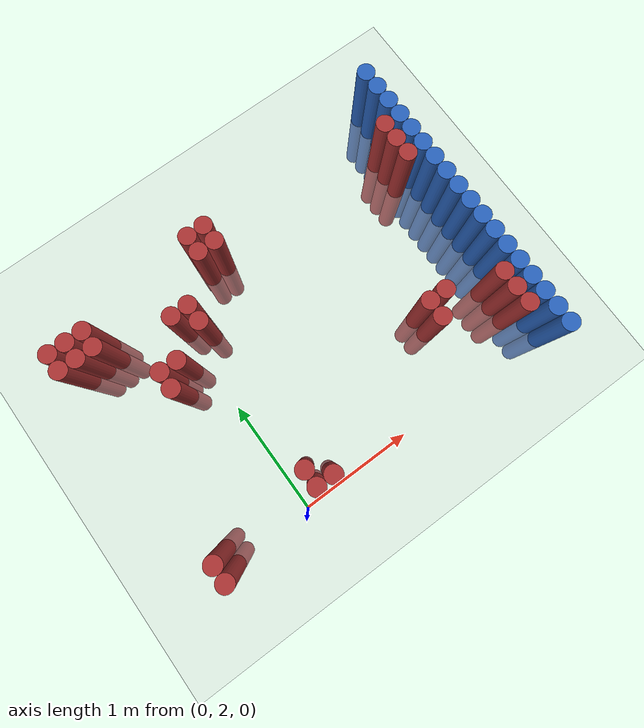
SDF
<sdf version="1.6">
 <world name="default">
  <model name="ground_plane">
   <static>1</static>
   <link name="link">
    <collision name="collision">
     <geometry><plane><normal>0 0 1</normal><size>100 100</size></plane></geometry>
     <surface><friction><ode><mu>100</mu><mu2>50</mu2></ode></friction></surface>
    </collision>
    <visual name="visual">
     <cast_shadows>0</cast_shadows>
     <geometry><plane><normal>0 0 1</normal><size>100 100</size></plane></geometry>
     <material>
      <script><uri>file://media/materials/scripts/gazebo.material</uri><name>Gazebo/Grey</name></script>
     </material>
    </visual>
   </link>
  </model>
  <model name="unit_cylinder_164">
   <static>1</static>
   <pose>-0.875000 3.925000 0.000000 0.000000 0.000000 0.000000</pose>
   <link name="link">
    <inertial>
     <mass>1</mass>
     <inertia><ixx>0.145833</ixx><ixy>0</ixy><ixz>0</ixz><iyy>0.145833</iyy><iyz>0</iyz><izz>0.125</izz></inertia>
    </inertial>
    <collision name="collision">
     <geometry><cylinder><radius>0.075000</radius><length>1.5</length></cylinder></geometry>
    </collision>
    <visual name="visual">
     <geometry><cylinder><radius>0.075000</radius><length>1.5</length></cylinder></geometry>
     <material>
      <ambient>0.648000 0.192000 0.192000 1</ambient>
      <diffuse>0.648000 0.192000 0.192000 1</diffuse>
     </material>
     <material>
      <script><name>Gazebo/Grey</name><uri>file://media/materials/scripts/gazebo.material</uri></script>
     </material>
    </visual>
   </link>
  </model>
  <model name="unit_cylinder_165">
   <static>1</static>
   <pose>-0.875000 4.075000 0.000000 0.000000 0.000000 0.000000</pose>
   <link name="link">
    <inertial>
     <mass>1</mass>
     <inertia><ixx>0.145833</ixx><ixy>0</ixy><ixz>0</ixz><iyy>0.145833</iyy><iyz>0</iyz><izz>0.125</izz></inertia>
    </inertial>
    <collision name="collision">
     <geometry><cylinder><radius>0.075000</radius><length>1.5</length></cylinder></geometry>
    </collision>
    <visual name="visual">
     <geometry><cylinder><radius>0.075000</radius><length>1.5</length></cylinder></geometry>
     <material>
      <ambient>0.648000 0.192000 0.192000 1</ambient>
      <diffuse>0.648000 0.192000 0.192000 1</diffuse>
     </material>
     <material>
      <script><name>Gazebo/Grey</name><uri>file://media/materials/scripts/gazebo.material</uri></script>
     </material>
    </visual>
   </link>
  </model>
  <model name="unit_cylinder_168">
   <static>1</static>
   <pose>-0.725000 1.975000 0.000000 0.000000 0.000000 0.000000</pose>
   <link name="link">
    <inertial>
     <mass>1</mass>
     <inertia><ixx>0.145833</ixx><ixy>0</ixy><ixz>0</ixz><iyy>0.145833</iyy><iyz>0</iyz><izz>0.125</izz></inertia>
    </inertial>
    <collision name="collision">
     <geometry><cylinder><radius>0.075000</radius><length>1.5</length></cylinder></geometry>
    </collision>
    <visual name="visual">
     <geometry><cylinder><radius>0.075000</radius><length>1.5</length></cylinder></geometry>
     <material>
      <ambient>0.648000 0.192000 0.192000 1</ambient>
      <diffuse>0.648000 0.192000 0.192000 1</diffuse>
     </material>
     <material>
      <script><name>Gazebo/Grey</name><uri>file://media/materials/scripts/gazebo.material</uri></script>
     </material>
    </visual>
   </link>
  </model>
  <model name="unit_cylinder_169">
   <static>1</static>
   <pose>-0.725000 2.125000 0.000000 0.000000 0.000000 0.000000</pose>
   <link name="link">
    <inertial>
     <mass>1</mass>
     <inertia><ixx>0.145833</ixx><ixy>0</ixy><ixz>0</ixz><iyy>0.145833</iyy><iyz>0</iyz><izz>0.125</izz></inertia>
    </inertial>
    <collision name="collision">
     <geometry><cylinder><radius>0.075000</radius><length>1.5</length></cylinder></geometry>
    </collision>
    <visual name="visual">
     <geometry><cylinder><radius>0.075000</radius><length>1.5</length></cylinder></geometry>
     <material>
      <ambient>0.648000 0.192000 0.192000 1</ambient>
      <diffuse>0.648000 0.192000 0.192000 1</diffuse>
     </material>
     <material>
      <script><name>Gazebo/Grey</name><uri>file://media/materials/scripts/gazebo.material</uri></script>
     </material>
    </visual>
   </link>
  </model>
  <model name="unit_cylinder_170">
   <static>1</static>
   <pose>-0.725000 3.925000 0.000000 0.000000 0.000000 0.000000</pose>
   <link name="link">
    <inertial>
     <mass>1</mass>
     <inertia><ixx>0.145833</ixx><ixy>0</ixy><ixz>0</ixz><iyy>0.145833</iyy><iyz>0</iyz><izz>0.125</izz></inertia>
    </inertial>
    <collision name="collision">
     <geometry><cylinder><radius>0.075000</radius><length>1.5</length></cylinder></geometry>
    </collision>
    <visual name="visual">
     <geometry><cylinder><radius>0.075000</radius><length>1.5</length></cylinder></geometry>
     <material>
      <ambient>0.648000 0.192000 0.192000 1</ambient>
      <diffuse>0.648000 0.192000 0.192000 1</diffuse>
     </material>
     <material>
      <script><name>Gazebo/Grey</name><uri>file://media/materials/scripts/gazebo.material</uri></script>
     </material>
    </visual>
   </link>
  </model>
  <model name="unit_cylinder_171">
   <static>1</static>
   <pose>-0.725000 4.075000 0.000000 0.000000 0.000000 0.000000</pose>
   <link name="link">
    <inertial>
     <mass>1</mass>
     <inertia><ixx>0.145833</ixx><ixy>0</ixy><ixz>0</ixz><iyy>0.145833</iyy><iyz>0</iyz><izz>0.125</izz></inertia>
    </inertial>
    <collision name="collision">
     <geometry><cylinder><radius>0.075000</radius><length>1.5</length></cylinder></geometry>
    </collision>
    <visual name="visual">
     <geometry><cylinder><radius>0.075000</radius><length>1.5</length></cylinder></geometry>
     <material>
      <ambient>0.648000 0.192000 0.192000 1</ambient>
      <diffuse>0.648000 0.192000 0.192000 1</diffuse>
     </material>
     <material>
      <script><name>Gazebo/Grey</name><uri>file://media/materials/scripts/gazebo.material</uri></script>
     </material>
    </visual>
   </link>
  </model>
  <model name="unit_cylinder_173">
   <static>1</static>
   <pose>-0.575000 3.925000 0.000000 0.000000 0.000000 0.000000</pose>
   <link name="link">
    <inertial>
     <mass>1</mass>
     <inertia><ixx>0.145833</ixx><ixy>0</ixy><ixz>0</ixz><iyy>0.145833</iyy><iyz>0</iyz><izz>0.125</izz></inertia>
    </inertial>
    <collision name="collision">
     <geometry><cylinder><radius>0.075000</radius><length>1.5</length></cylinder></geometry>
    </collision>
    <visual name="visual">
     <geometry><cylinder><radius>0.075000</radius><length>1.5</length></cylinder></geometry>
     <material>
      <ambient>0.648000 0.192000 0.192000 1</ambient>
      <diffuse>0.648000 0.192000 0.192000 1</diffuse>
     </material>
     <material>
      <script><name>Gazebo/Grey</name><uri>file://media/materials/scripts/gazebo.material</uri></script>
     </material>
    </visual>
   </link>
  </model>
  <model name="unit_cylinder_174">
   <static>1</static>
   <pose>-0.575000 4.075000 0.000000 0.000000 0.000000 0.000000</pose>
   <link name="link">
    <inertial>
     <mass>1</mass>
     <inertia><ixx>0.145833</ixx><ixy>0</ixy><ixz>0</ixz><iyy>0.145833</iyy><iyz>0</iyz><izz>0.125</izz></inertia>
    </inertial>
    <collision name="collision">
     <geometry><cylinder><radius>0.075000</radius><length>1.5</length></cylinder></geometry>
    </collision>
    <visual name="visual">
     <geometry><cylinder><radius>0.075000</radius><length>1.5</length></cylinder></geometry>
     <material>
      <ambient>0.648000 0.192000 0.192000 1</ambient>
      <diffuse>0.648000 0.192000 0.192000 1</diffuse>
     </material>
     <material>
      <script><name>Gazebo/Grey</name><uri>file://media/materials/scripts/gazebo.material</uri></script>
     </material>
    </visual>
   </link>
  </model>
  <model name="unit_cylinder_176">
   <static>1</static>
   <pose>-0.275000 3.325000 0.000000 0.000000 0.000000 0.000000</pose>
   <link name="link">
    <inertial>
     <mass>1</mass>
     <inertia><ixx>0.145833</ixx><ixy>0</ixy><ixz>0</ixz><iyy>0.145833</iyy><iyz>0</iyz><izz>0.125</izz></inertia>
    </inertial>
    <collision name="collision">
     <geometry><cylinder><radius>0.075000</radius><length>1.5</length></cylinder></geometry>
    </collision>
    <visual name="visual">
     <geometry><cylinder><radius>0.075000</radius><length>1.5</length></cylinder></geometry>
     <material>
      <ambient>0.648000 0.192000 0.192000 1</ambient>
      <diffuse>0.648000 0.192000 0.192000 1</diffuse>
     </material>
     <material>
      <script><name>Gazebo/Grey</name><uri>file://media/materials/scripts/gazebo.material</uri></script>
     </material>
    </visual>
   </link>
  </model>
  <model name="unit_cylinder_177">
   <static>1</static>
   <pose>-0.275000 3.475000 0.000000 0.000000 0.000000 0.000000</pose>
   <link name="link">
    <inertial>
     <mass>1</mass>
     <inertia><ixx>0.145833</ixx><ixy>0</ixy><ixz>0</ixz><iyy>0.145833</iyy><iyz>0</iyz><izz>0.125</izz></inertia>
    </inertial>
    <collision name="collision">
     <geometry><cylinder><radius>0.075000</radius><length>1.5</length></cylinder></geometry>
    </collision>
    <visual name="visual">
     <geometry><cylinder><radius>0.075000</radius><length>1.5</length></cylinder></geometry>
     <material>
      <ambient>0.648000 0.192000 0.192000 1</ambient>
      <diffuse>0.648000 0.192000 0.192000 1</diffuse>
     </material>
     <material>
      <script><name>Gazebo/Grey</name><uri>file://media/materials/scripts/gazebo.material</uri></script>
     </material>
    </visual>
   </link>
  </model>
  <model name="unit_cylinder_178">
   <static>1</static>
   <pose>-0.125000 3.475000 0.000000 0.000000 0.000000 0.000000</pose>
   <link name="link">
    <inertial>
     <mass>1</mass>
     <inertia><ixx>0.145833</ixx><ixy>0</ixy><ixz>0</ixz><iyy>0.145833</iyy><iyz>0</iyz><izz>0.125</izz></inertia>
    </inertial>
    <collision name="collision">
     <geometry><cylinder><radius>0.075000</radius><length>1.5</length></cylinder></geometry>
    </collision>
    <visual name="visual">
     <geometry><cylinder><radius>0.075000</radius><length>1.5</length></cylinder></geometry>
     <material>
      <ambient>0.648000 0.192000 0.192000 1</ambient>
      <diffuse>0.648000 0.192000 0.192000 1</diffuse>
     </material>
     <material>
      <script><name>Gazebo/Grey</name><uri>file://media/materials/scripts/gazebo.material</uri></script>
     </material>
    </visual>
   </link>
  </model>
  <model name="unit_cylinder_179">
   <static>1</static>
   <pose>0.025000 3.775000 0.000000 0.000000 0.000000 0.000000</pose>
   <link name="link">
    <inertial>
     <mass>1</mass>
     <inertia><ixx>0.145833</ixx><ixy>0</ixy><ixz>0</ixz><iyy>0.145833</iyy><iyz>0</iyz><izz>0.125</izz></inertia>
    </inertial>
    <collision name="collision">
     <geometry><cylinder><radius>0.075000</radius><length>1.5</length></cylinder></geometry>
    </collision>
    <visual name="visual">
     <geometry><cylinder><radius>0.075000</radius><length>1.5</length></cylinder></geometry>
     <material>
      <ambient>0.648000 0.192000 0.192000 1</ambient>
      <diffuse>0.648000 0.192000 0.192000 1</diffuse>
     </material>
     <material>
      <script><name>Gazebo/Grey</name><uri>file://media/materials/scripts/gazebo.material</uri></script>
     </material>
    </visual>
   </link>
  </model>
  <model name="unit_cylinder_180">
   <static>1</static>
   <pose>0.175000 2.125000 0.000000 0.000000 0.000000 0.000000</pose>
   <link name="link">
    <inertial>
     <mass>1</mass>
     <inertia><ixx>0.145833</ixx><ixy>0</ixy><ixz>0</ixz><iyy>0.145833</iyy><iyz>0</iyz><izz>0.125</izz></inertia>
    </inertial>
    <collision name="collision">
     <geometry><cylinder><radius>0.075000</radius><length>1.5</length></cylinder></geometry>
    </collision>
    <visual name="visual">
     <geometry><cylinder><radius>0.075000</radius><length>1.5</length></cylinder></geometry>
     <material>
      <ambient>0.648000 0.192000 0.192000 1</ambient>
      <diffuse>0.648000 0.192000 0.192000 1</diffuse>
     </material>
     <material>
      <script><name>Gazebo/Grey</name><uri>file://media/materials/scripts/gazebo.material</uri></script>
     </material>
    </visual>
   </link>
  </model>
  <model name="unit_cylinder_181">
   <static>1</static>
   <pose>0.175000 2.275000 0.000000 0.000000 0.000000 0.000000</pose>
   <link name="link">
    <inertial>
     <mass>1</mass>
     <inertia><ixx>0.145833</ixx><ixy>0</ixy><ixz>0</ixz><iyy>0.145833</iyy><iyz>0</iyz><izz>0.125</izz></inertia>
    </inertial>
    <collision name="collision">
     <geometry><cylinder><radius>0.075000</radius><length>1.5</length></cylinder></geometry>
    </collision>
    <visual name="visual">
     <geometry><cylinder><radius>0.075000</radius><length>1.5</length></cylinder></geometry>
     <material>
      <ambient>0.648000 0.192000 0.192000 1</ambient>
      <diffuse>0.648000 0.192000 0.192000 1</diffuse>
     </material>
     <material>
      <script><name>Gazebo/Grey</name><uri>file://media/materials/scripts/gazebo.material</uri></script>
     </material>
    </visual>
   </link>
  </model>
  <model name="unit_cylinder_182">
   <static>1</static>
   <pose>0.175000 3.625000 0.000000 0.000000 0.000000 0.000000</pose>
   <link name="link">
    <inertial>
     <mass>1</mass>
     <inertia><ixx>0.145833</ixx><ixy>0</ixy><ixz>0</ixz><iyy>0.145833</iyy><iyz>0</iyz><izz>0.125</izz></inertia>
    </inertial>
    <collision name="collision">
     <geometry><cylinder><radius>0.075000</radius><length>1.5</length></cylinder></geometry>
    </collision>
    <visual name="visual">
     <geometry><cylinder><radius>0.075000</radius><length>1.5</length></cylinder></geometry>
     <material>
      <ambient>0.648000 0.192000 0.192000 1</ambient>
      <diffuse>0.648000 0.192000 0.192000 1</diffuse>
     </material>
     <material>
      <script><name>Gazebo/Grey</name><uri>file://media/materials/scripts/gazebo.material</uri></script>
     </material>
    </visual>
   </link>
  </model>
  <model name="unit_cylinder_183">
   <static>1</static>
   <pose>0.175000 3.775000 0.000000 0.000000 0.000000 0.000000</pose>
   <link name="link">
    <inertial>
     <mass>1</mass>
     <inertia><ixx>0.145833</ixx><ixy>0</ixy><ixz>0</ixz><iyy>0.145833</iyy><iyz>0</iyz><izz>0.125</izz></inertia>
    </inertial>
    <collision name="collision">
     <geometry><cylinder><radius>0.075000</radius><length>1.5</length></cylinder></geometry>
    </collision>
    <visual name="visual">
     <geometry><cylinder><radius>0.075000</radius><length>1.5</length></cylinder></geometry>
     <material>
      <ambient>0.648000 0.192000 0.192000 1</ambient>
      <diffuse>0.648000 0.192000 0.192000 1</diffuse>
     </material>
     <material>
      <script><name>Gazebo/Grey</name><uri>file://media/materials/scripts/gazebo.material</uri></script>
     </material>
    </visual>
   </link>
  </model>
  <model name="unit_cylinder_184">
   <static>1</static>
   <pose>0.325000 2.125000 0.000000 0.000000 0.000000 0.000000</pose>
   <link name="link">
    <inertial>
     <mass>1</mass>
     <inertia><ixx>0.145833</ixx><ixy>0</ixy><ixz>0</ixz><iyy>0.145833</iyy><iyz>0</iyz><izz>0.125</izz></inertia>
    </inertial>
    <collision name="collision">
     <geometry><cylinder><radius>0.075000</radius><length>1.5</length></cylinder></geometry>
    </collision>
    <visual name="visual">
     <geometry><cylinder><radius>0.075000</radius><length>1.5</length></cylinder></geometry>
     <material>
      <ambient>0.648000 0.192000 0.192000 1</ambient>
      <diffuse>0.648000 0.192000 0.192000 1</diffuse>
     </material>
     <material>
      <script><name>Gazebo/Grey</name><uri>file://media/materials/scripts/gazebo.material</uri></script>
     </material>
    </visual>
   </link>
  </model>
  <model name="unit_cylinder_186">
   <static>1</static>
   <pose>0.475000 4.075000 0.000000 0.000000 0.000000 0.000000</pose>
   <link name="link">
    <inertial>
     <mass>1</mass>
     <inertia><ixx>0.145833</ixx><ixy>0</ixy><ixz>0</ixz><iyy>0.145833</iyy><iyz>0</iyz><izz>0.125</izz></inertia>
    </inertial>
    <collision name="collision">
     <geometry><cylinder><radius>0.075000</radius><length>1.5</length></cylinder></geometry>
    </collision>
    <visual name="visual">
     <geometry><cylinder><radius>0.075000</radius><length>1.5</length></cylinder></geometry>
     <material>
      <ambient>0.648000 0.192000 0.192000 1</ambient>
      <diffuse>0.648000 0.192000 0.192000 1</diffuse>
     </material>
     <material>
      <script><name>Gazebo/Grey</name><uri>file://media/materials/scripts/gazebo.material</uri></script>
     </material>
    </visual>
   </link>
  </model>
  <model name="unit_cylinder_187">
   <static>1</static>
   <pose>0.475000 4.225000 0.000000 0.000000 0.000000 0.000000</pose>
   <link name="link">
    <inertial>
     <mass>1</mass>
     <inertia><ixx>0.145833</ixx><ixy>0</ixy><ixz>0</ixz><iyy>0.145833</iyy><iyz>0</iyz><izz>0.125</izz></inertia>
    </inertial>
    <collision name="collision">
     <geometry><cylinder><radius>0.075000</radius><length>1.5</length></cylinder></geometry>
    </collision>
    <visual name="visual">
     <geometry><cylinder><radius>0.075000</radius><length>1.5</length></cylinder></geometry>
     <material>
      <ambient>0.648000 0.192000 0.192000 1</ambient>
      <diffuse>0.648000 0.192000 0.192000 1</diffuse>
     </material>
     <material>
      <script><name>Gazebo/Grey</name><uri>file://media/materials/scripts/gazebo.material</uri></script>
     </material>
    </visual>
   </link>
  </model>
  <model name="unit_cylinder_191">
   <static>1</static>
   <pose>0.625000 4.075000 0.000000 0.000000 0.000000 0.000000</pose>
   <link name="link">
    <inertial>
     <mass>1</mass>
     <inertia><ixx>0.145833</ixx><ixy>0</ixy><ixz>0</ixz><iyy>0.145833</iyy><iyz>0</iyz><izz>0.125</izz></inertia>
    </inertial>
    <collision name="collision">
     <geometry><cylinder><radius>0.075000</radius><length>1.5</length></cylinder></geometry>
    </collision>
    <visual name="visual">
     <geometry><cylinder><radius>0.075000</radius><length>1.5</length></cylinder></geometry>
     <material>
      <ambient>0.648000 0.192000 0.192000 1</ambient>
      <diffuse>0.648000 0.192000 0.192000 1</diffuse>
     </material>
     <material>
      <script><name>Gazebo/Grey</name><uri>file://media/materials/scripts/gazebo.material</uri></script>
     </material>
    </visual>
   </link>
  </model>
  <model name="unit_cylinder_192">
   <static>1</static>
   <pose>0.625000 4.225000 0.000000 0.000000 0.000000 0.000000</pose>
   <link name="link">
    <inertial>
     <mass>1</mass>
     <inertia><ixx>0.145833</ixx><ixy>0</ixy><ixz>0</ixz><iyy>0.145833</iyy><iyz>0</iyz><izz>0.125</izz></inertia>
    </inertial>
    <collision name="collision">
     <geometry><cylinder><radius>0.075000</radius><length>1.5</length></cylinder></geometry>
    </collision>
    <visual name="visual">
     <geometry><cylinder><radius>0.075000</radius><length>1.5</length></cylinder></geometry>
     <material>
      <ambient>0.648000 0.192000 0.192000 1</ambient>
      <diffuse>0.648000 0.192000 0.192000 1</diffuse>
     </material>
     <material>
      <script><name>Gazebo/Grey</name><uri>file://media/materials/scripts/gazebo.material</uri></script>
     </material>
    </visual>
   </link>
  </model>
  <model name="unit_cylinder_196">
   <static>1</static>
   <pose>1.675000 2.575000 0.000000 0.000000 0.000000 0.000000</pose>
   <link name="link">
    <inertial>
     <mass>1</mass>
     <inertia><ixx>0.145833</ixx><ixy>0</ixy><ixz>0</ixz><iyy>0.145833</iyy><iyz>0</iyz><izz>0.125</izz></inertia>
    </inertial>
    <collision name="collision">
     <geometry><cylinder><radius>0.075000</radius><length>1.5</length></cylinder></geometry>
    </collision>
    <visual name="visual">
     <geometry><cylinder><radius>0.075000</radius><length>1.5</length></cylinder></geometry>
     <material>
      <ambient>0.648000 0.192000 0.192000 1</ambient>
      <diffuse>0.648000 0.192000 0.192000 1</diffuse>
     </material>
     <material>
      <script><name>Gazebo/Grey</name><uri>file://media/materials/scripts/gazebo.material</uri></script>
     </material>
    </visual>
   </link>
  </model>
  <model name="unit_cylinder_197">
   <static>1</static>
   <pose>1.675000 2.725000 0.000000 0.000000 0.000000 0.000000</pose>
   <link name="link">
    <inertial>
     <mass>1</mass>
     <inertia><ixx>0.145833</ixx><ixy>0</ixy><ixz>0</ixz><iyy>0.145833</iyy><iyz>0</iyz><izz>0.125</izz></inertia>
    </inertial>
    <collision name="collision">
     <geometry><cylinder><radius>0.075000</radius><length>1.5</length></cylinder></geometry>
    </collision>
    <visual name="visual">
     <geometry><cylinder><radius>0.075000</radius><length>1.5</length></cylinder></geometry>
     <material>
      <ambient>0.648000 0.192000 0.192000 1</ambient>
      <diffuse>0.648000 0.192000 0.192000 1</diffuse>
     </material>
     <material>
      <script><name>Gazebo/Grey</name><uri>file://media/materials/scripts/gazebo.material</uri></script>
     </material>
    </visual>
   </link>
  </model>
  <model name="unit_cylinder_198">
   <static>1</static>
   <pose>1.825000 2.725000 0.000000 0.000000 0.000000 0.000000</pose>
   <link name="link">
    <inertial>
     <mass>1</mass>
     <inertia><ixx>0.145833</ixx><ixy>0</ixy><ixz>0</ixz><iyy>0.145833</iyy><iyz>0</iyz><izz>0.125</izz></inertia>
    </inertial>
    <collision name="collision">
     <geometry><cylinder><radius>0.075000</radius><length>1.5</length></cylinder></geometry>
    </collision>
    <visual name="visual">
     <geometry><cylinder><radius>0.075000</radius><length>1.5</length></cylinder></geometry>
     <material>
      <ambient>0.648000 0.192000 0.192000 1</ambient>
      <diffuse>0.648000 0.192000 0.192000 1</diffuse>
     </material>
     <material>
      <script><name>Gazebo/Grey</name><uri>file://media/materials/scripts/gazebo.material</uri></script>
     </material>
    </visual>
   </link>
  </model>
  <model name="unit_cylinder_204">
   <static>1</static>
   <pose>2.275000 2.275000 0.000000 0.000000 0.000000 0.000000</pose>
   <link name="link">
    <inertial>
     <mass>1</mass>
     <inertia><ixx>0.145833</ixx><ixy>0</ixy><ixz>0</ixz><iyy>0.145833</iyy><iyz>0</iyz><izz>0.125</izz></inertia>
    </inertial>
    <collision name="collision">
     <geometry><cylinder><radius>0.075000</radius><length>1.5</length></cylinder></geometry>
    </collision>
    <visual name="visual">
     <geometry><cylinder><radius>0.075000</radius><length>1.5</length></cylinder></geometry>
     <material>
      <ambient>0.648000 0.192000 0.192000 1</ambient>
      <diffuse>0.648000 0.192000 0.192000 1</diffuse>
     </material>
     <material>
      <script><name>Gazebo/Grey</name><uri>file://media/materials/scripts/gazebo.material</uri></script>
     </material>
    </visual>
   </link>
  </model>
  <model name="unit_cylinder_205">
   <static>1</static>
   <pose>2.275000 2.425000 0.000000 0.000000 0.000000 0.000000</pose>
   <link name="link">
    <inertial>
     <mass>1</mass>
     <inertia><ixx>0.145833</ixx><ixy>0</ixy><ixz>0</ixz><iyy>0.145833</iyy><iyz>0</iyz><izz>0.125</izz></inertia>
    </inertial>
    <collision name="collision">
     <geometry><cylinder><radius>0.075000</radius><length>1.5</length></cylinder></geometry>
    </collision>
    <visual name="visual">
     <geometry><cylinder><radius>0.075000</radius><length>1.5</length></cylinder></geometry>
     <material>
      <ambient>0.648000 0.192000 0.192000 1</ambient>
      <diffuse>0.648000 0.192000 0.192000 1</diffuse>
     </material>
     <material>
      <script><name>Gazebo/Grey</name><uri>file://media/materials/scripts/gazebo.material</uri></script>
     </material>
    </visual>
   </link>
  </model>
  <model name="unit_cylinder_206">
   <static>1</static>
   <pose>2.275000 2.575000 0.000000 0.000000 0.000000 0.000000</pose>
   <link name="link">
    <inertial>
     <mass>1</mass>
     <inertia><ixx>0.145833</ixx><ixy>0</ixy><ixz>0</ixz><iyy>0.145833</iyy><iyz>0</iyz><izz>0.125</izz></inertia>
    </inertial>
    <collision name="collision">
     <geometry><cylinder><radius>0.075000</radius><length>1.5</length></cylinder></geometry>
    </collision>
    <visual name="visual">
     <geometry><cylinder><radius>0.075000</radius><length>1.5</length></cylinder></geometry>
     <material>
      <ambient>0.648000 0.192000 0.192000 1</ambient>
      <diffuse>0.648000 0.192000 0.192000 1</diffuse>
     </material>
     <material>
      <script><name>Gazebo/Grey</name><uri>file://media/materials/scripts/gazebo.material</uri></script>
     </material>
    </visual>
   </link>
  </model>
  <model name="unit_cylinder_207">
   <static>1</static>
   <pose>2.275000 3.775000 0.000000 0.000000 0.000000 0.000000</pose>
   <link name="link">
    <inertial>
     <mass>1</mass>
     <inertia><ixx>0.145833</ixx><ixy>0</ixy><ixz>0</ixz><iyy>0.145833</iyy><iyz>0</iyz><izz>0.125</izz></inertia>
    </inertial>
    <collision name="collision">
     <geometry><cylinder><radius>0.075000</radius><length>1.5</length></cylinder></geometry>
    </collision>
    <visual name="visual">
     <geometry><cylinder><radius>0.075000</radius><length>1.5</length></cylinder></geometry>
     <material>
      <ambient>0.648000 0.192000 0.192000 1</ambient>
      <diffuse>0.648000 0.192000 0.192000 1</diffuse>
     </material>
     <material>
      <script><name>Gazebo/Grey</name><uri>file://media/materials/scripts/gazebo.material</uri></script>
     </material>
    </visual>
   </link>
  </model>
  <model name="unit_cylinder_208">
   <static>1</static>
   <pose>2.275000 3.925000 0.000000 0.000000 0.000000 0.000000</pose>
   <link name="link">
    <inertial>
     <mass>1</mass>
     <inertia><ixx>0.145833</ixx><ixy>0</ixy><ixz>0</ixz><iyy>0.145833</iyy><iyz>0</iyz><izz>0.125</izz></inertia>
    </inertial>
    <collision name="collision">
     <geometry><cylinder><radius>0.075000</radius><length>1.5</length></cylinder></geometry>
    </collision>
    <visual name="visual">
     <geometry><cylinder><radius>0.075000</radius><length>1.5</length></cylinder></geometry>
     <material>
      <ambient>0.648000 0.192000 0.192000 1</ambient>
      <diffuse>0.648000 0.192000 0.192000 1</diffuse>
     </material>
     <material>
      <script><name>Gazebo/Grey</name><uri>file://media/materials/scripts/gazebo.material</uri></script>
     </material>
    </visual>
   </link>
  </model>
  <model name="unit_cylinder_209">
   <static>1</static>
   <pose>2.275000 4.075000 0.000000 0.000000 0.000000 0.000000</pose>
   <link name="link">
    <inertial>
     <mass>1</mass>
     <inertia><ixx>0.145833</ixx><ixy>0</ixy><ixz>0</ixz><iyy>0.145833</iyy><iyz>0</iyz><izz>0.125</izz></inertia>
    </inertial>
    <collision name="collision">
     <geometry><cylinder><radius>0.075000</radius><length>1.5</length></cylinder></geometry>
    </collision>
    <visual name="visual">
     <geometry><cylinder><radius>0.075000</radius><length>1.5</length></cylinder></geometry>
     <material>
      <ambient>0.648000 0.192000 0.192000 1</ambient>
      <diffuse>0.648000 0.192000 0.192000 1</diffuse>
     </material>
     <material>
      <script><name>Gazebo/Grey</name><uri>file://media/materials/scripts/gazebo.material</uri></script>
     </material>
    </visual>
   </link>
  </model>
  <model name="unit_cylinder_222">
   <static>1</static>
   <pose>2.425000 1.975000 0.000000 0.000000 0.000000 0.000000</pose>
   <link name="link">
    <inertial>
     <mass>1</mass>
     <inertia><ixx>0.145833</ixx><ixy>0</ixy><ixz>0</ixz><iyy>0.145833</iyy><iyz>0</iyz><izz>0.125</izz></inertia>
    </inertial>
    <collision name="collision">
     <geometry><cylinder><radius>0.075000</radius><length>1.5</length></cylinder></geometry>
    </collision>
    <visual name="visual">
     <geometry><cylinder><radius>0.075000</radius><length>1.5</length></cylinder></geometry>
     <material>
      <ambient>0.152000 0.379000 0.720000 1</ambient>
      <diffuse>0.152000 0.379000 0.720000 1</diffuse>
     </material>
     <material>
      <script><name>Gazebo/Grey</name><uri>file://media/materials/scripts/gazebo.material</uri></script>
     </material>
    </visual>
   </link>
  </model>
  <model name="unit_cylinder_223">
   <static>1</static>
   <pose>2.425000 2.125000 0.000000 0.000000 0.000000 0.000000</pose>
   <link name="link">
    <inertial>
     <mass>1</mass>
     <inertia><ixx>0.145833</ixx><ixy>0</ixy><ixz>0</ixz><iyy>0.145833</iyy><iyz>0</iyz><izz>0.125</izz></inertia>
    </inertial>
    <collision name="collision">
     <geometry><cylinder><radius>0.075000</radius><length>1.5</length></cylinder></geometry>
    </collision>
    <visual name="visual">
     <geometry><cylinder><radius>0.075000</radius><length>1.5</length></cylinder></geometry>
     <material>
      <ambient>0.152000 0.379000 0.720000 1</ambient>
      <diffuse>0.152000 0.379000 0.720000 1</diffuse>
     </material>
     <material>
      <script><name>Gazebo/Grey</name><uri>file://media/materials/scripts/gazebo.material</uri></script>
     </material>
    </visual>
   </link>
  </model>
  <model name="unit_cylinder_224">
   <static>1</static>
   <pose>2.425000 2.275000 0.000000 0.000000 0.000000 0.000000</pose>
   <link name="link">
    <inertial>
     <mass>1</mass>
     <inertia><ixx>0.145833</ixx><ixy>0</ixy><ixz>0</ixz><iyy>0.145833</iyy><iyz>0</iyz><izz>0.125</izz></inertia>
    </inertial>
    <collision name="collision">
     <geometry><cylinder><radius>0.075000</radius><length>1.5</length></cylinder></geometry>
    </collision>
    <visual name="visual">
     <geometry><cylinder><radius>0.075000</radius><length>1.5</length></cylinder></geometry>
     <material>
      <ambient>0.152000 0.379000 0.720000 1</ambient>
      <diffuse>0.152000 0.379000 0.720000 1</diffuse>
     </material>
     <material>
      <script><name>Gazebo/Grey</name><uri>file://media/materials/scripts/gazebo.material</uri></script>
     </material>
    </visual>
   </link>
  </model>
  <model name="unit_cylinder_225">
   <static>1</static>
   <pose>2.425000 2.425000 0.000000 0.000000 0.000000 0.000000</pose>
   <link name="link">
    <inertial>
     <mass>1</mass>
     <inertia><ixx>0.145833</ixx><ixy>0</ixy><ixz>0</ixz><iyy>0.145833</iyy><iyz>0</iyz><izz>0.125</izz></inertia>
    </inertial>
    <collision name="collision">
     <geometry><cylinder><radius>0.075000</radius><length>1.5</length></cylinder></geometry>
    </collision>
    <visual name="visual">
     <geometry><cylinder><radius>0.075000</radius><length>1.5</length></cylinder></geometry>
     <material>
      <ambient>0.152000 0.379000 0.720000 1</ambient>
      <diffuse>0.152000 0.379000 0.720000 1</diffuse>
     </material>
     <material>
      <script><name>Gazebo/Grey</name><uri>file://media/materials/scripts/gazebo.material</uri></script>
     </material>
    </visual>
   </link>
  </model>
  <model name="unit_cylinder_226">
   <static>1</static>
   <pose>2.425000 2.575000 0.000000 0.000000 0.000000 0.000000</pose>
   <link name="link">
    <inertial>
     <mass>1</mass>
     <inertia><ixx>0.145833</ixx><ixy>0</ixy><ixz>0</ixz><iyy>0.145833</iyy><iyz>0</iyz><izz>0.125</izz></inertia>
    </inertial>
    <collision name="collision">
     <geometry><cylinder><radius>0.075000</radius><length>1.5</length></cylinder></geometry>
    </collision>
    <visual name="visual">
     <geometry><cylinder><radius>0.075000</radius><length>1.5</length></cylinder></geometry>
     <material>
      <ambient>0.152000 0.379000 0.720000 1</ambient>
      <diffuse>0.152000 0.379000 0.720000 1</diffuse>
     </material>
     <material>
      <script><name>Gazebo/Grey</name><uri>file://media/materials/scripts/gazebo.material</uri></script>
     </material>
    </visual>
   </link>
  </model>
  <model name="unit_cylinder_227">
   <static>1</static>
   <pose>2.425000 2.725000 0.000000 0.000000 0.000000 0.000000</pose>
   <link name="link">
    <inertial>
     <mass>1</mass>
     <inertia><ixx>0.145833</ixx><ixy>0</ixy><ixz>0</ixz><iyy>0.145833</iyy><iyz>0</iyz><izz>0.125</izz></inertia>
    </inertial>
    <collision name="collision">
     <geometry><cylinder><radius>0.075000</radius><length>1.5</length></cylinder></geometry>
    </collision>
    <visual name="visual">
     <geometry><cylinder><radius>0.075000</radius><length>1.5</length></cylinder></geometry>
     <material>
      <ambient>0.152000 0.379000 0.720000 1</ambient>
      <diffuse>0.152000 0.379000 0.720000 1</diffuse>
     </material>
     <material>
      <script><name>Gazebo/Grey</name><uri>file://media/materials/scripts/gazebo.material</uri></script>
     </material>
    </visual>
   </link>
  </model>
  <model name="unit_cylinder_228">
   <static>1</static>
   <pose>2.425000 2.875000 0.000000 0.000000 0.000000 0.000000</pose>
   <link name="link">
    <inertial>
     <mass>1</mass>
     <inertia><ixx>0.145833</ixx><ixy>0</ixy><ixz>0</ixz><iyy>0.145833</iyy><iyz>0</iyz><izz>0.125</izz></inertia>
    </inertial>
    <collision name="collision">
     <geometry><cylinder><radius>0.075000</radius><length>1.5</length></cylinder></geometry>
    </collision>
    <visual name="visual">
     <geometry><cylinder><radius>0.075000</radius><length>1.5</length></cylinder></geometry>
     <material>
      <ambient>0.152000 0.379000 0.720000 1</ambient>
      <diffuse>0.152000 0.379000 0.720000 1</diffuse>
     </material>
     <material>
      <script><name>Gazebo/Grey</name><uri>file://media/materials/scripts/gazebo.material</uri></script>
     </material>
    </visual>
   </link>
  </model>
  <model name="unit_cylinder_229">
   <static>1</static>
   <pose>2.425000 3.025000 0.000000 0.000000 0.000000 0.000000</pose>
   <link name="link">
    <inertial>
     <mass>1</mass>
     <inertia><ixx>0.145833</ixx><ixy>0</ixy><ixz>0</ixz><iyy>0.145833</iyy><iyz>0</iyz><izz>0.125</izz></inertia>
    </inertial>
    <collision name="collision">
     <geometry><cylinder><radius>0.075000</radius><length>1.5</length></cylinder></geometry>
    </collision>
    <visual name="visual">
     <geometry><cylinder><radius>0.075000</radius><length>1.5</length></cylinder></geometry>
     <material>
      <ambient>0.152000 0.379000 0.720000 1</ambient>
      <diffuse>0.152000 0.379000 0.720000 1</diffuse>
     </material>
     <material>
      <script><name>Gazebo/Grey</name><uri>file://media/materials/scripts/gazebo.material</uri></script>
     </material>
    </visual>
   </link>
  </model>
  <model name="unit_cylinder_230">
   <static>1</static>
   <pose>2.425000 3.175000 0.000000 0.000000 0.000000 0.000000</pose>
   <link name="link">
    <inertial>
     <mass>1</mass>
     <inertia><ixx>0.145833</ixx><ixy>0</ixy><ixz>0</ixz><iyy>0.145833</iyy><iyz>0</iyz><izz>0.125</izz></inertia>
    </inertial>
    <collision name="collision">
     <geometry><cylinder><radius>0.075000</radius><length>1.5</length></cylinder></geometry>
    </collision>
    <visual name="visual">
     <geometry><cylinder><radius>0.075000</radius><length>1.5</length></cylinder></geometry>
     <material>
      <ambient>0.152000 0.379000 0.720000 1</ambient>
      <diffuse>0.152000 0.379000 0.720000 1</diffuse>
     </material>
     <material>
      <script><name>Gazebo/Grey</name><uri>file://media/materials/scripts/gazebo.material</uri></script>
     </material>
    </visual>
   </link>
  </model>
  <model name="unit_cylinder_231">
   <static>1</static>
   <pose>2.425000 3.325000 0.000000 0.000000 0.000000 0.000000</pose>
   <link name="link">
    <inertial>
     <mass>1</mass>
     <inertia><ixx>0.145833</ixx><ixy>0</ixy><ixz>0</ixz><iyy>0.145833</iyy><iyz>0</iyz><izz>0.125</izz></inertia>
    </inertial>
    <collision name="collision">
     <geometry><cylinder><radius>0.075000</radius><length>1.5</length></cylinder></geometry>
    </collision>
    <visual name="visual">
     <geometry><cylinder><radius>0.075000</radius><length>1.5</length></cylinder></geometry>
     <material>
      <ambient>0.152000 0.379000 0.720000 1</ambient>
      <diffuse>0.152000 0.379000 0.720000 1</diffuse>
     </material>
     <material>
      <script><name>Gazebo/Grey</name><uri>file://media/materials/scripts/gazebo.material</uri></script>
     </material>
    </visual>
   </link>
  </model>
  <model name="unit_cylinder_232">
   <static>1</static>
   <pose>2.425000 3.475000 0.000000 0.000000 0.000000 0.000000</pose>
   <link name="link">
    <inertial>
     <mass>1</mass>
     <inertia><ixx>0.145833</ixx><ixy>0</ixy><ixz>0</ixz><iyy>0.145833</iyy><iyz>0</iyz><izz>0.125</izz></inertia>
    </inertial>
    <collision name="collision">
     <geometry><cylinder><radius>0.075000</radius><length>1.5</length></cylinder></geometry>
    </collision>
    <visual name="visual">
     <geometry><cylinder><radius>0.075000</radius><length>1.5</length></cylinder></geometry>
     <material>
      <ambient>0.152000 0.379000 0.720000 1</ambient>
      <diffuse>0.152000 0.379000 0.720000 1</diffuse>
     </material>
     <material>
      <script><name>Gazebo/Grey</name><uri>file://media/materials/scripts/gazebo.material</uri></script>
     </material>
    </visual>
   </link>
  </model>
  <model name="unit_cylinder_233">
   <static>1</static>
   <pose>2.425000 3.625000 0.000000 0.000000 0.000000 0.000000</pose>
   <link name="link">
    <inertial>
     <mass>1</mass>
     <inertia><ixx>0.145833</ixx><ixy>0</ixy><ixz>0</ixz><iyy>0.145833</iyy><iyz>0</iyz><izz>0.125</izz></inertia>
    </inertial>
    <collision name="collision">
     <geometry><cylinder><radius>0.075000</radius><length>1.5</length></cylinder></geometry>
    </collision>
    <visual name="visual">
     <geometry><cylinder><radius>0.075000</radius><length>1.5</length></cylinder></geometry>
     <material>
      <ambient>0.152000 0.379000 0.720000 1</ambient>
      <diffuse>0.152000 0.379000 0.720000 1</diffuse>
     </material>
     <material>
      <script><name>Gazebo/Grey</name><uri>file://media/materials/scripts/gazebo.material</uri></script>
     </material>
    </visual>
   </link>
  </model>
  <model name="unit_cylinder_234">
   <static>1</static>
   <pose>2.425000 3.775000 0.000000 0.000000 0.000000 0.000000</pose>
   <link name="link">
    <inertial>
     <mass>1</mass>
     <inertia><ixx>0.145833</ixx><ixy>0</ixy><ixz>0</ixz><iyy>0.145833</iyy><iyz>0</iyz><izz>0.125</izz></inertia>
    </inertial>
    <collision name="collision">
     <geometry><cylinder><radius>0.075000</radius><length>1.5</length></cylinder></geometry>
    </collision>
    <visual name="visual">
     <geometry><cylinder><radius>0.075000</radius><length>1.5</length></cylinder></geometry>
     <material>
      <ambient>0.152000 0.379000 0.720000 1</ambient>
      <diffuse>0.152000 0.379000 0.720000 1</diffuse>
     </material>
     <material>
      <script><name>Gazebo/Grey</name><uri>file://media/materials/scripts/gazebo.material</uri></script>
     </material>
    </visual>
   </link>
  </model>
  <model name="unit_cylinder_235">
   <static>1</static>
   <pose>2.425000 3.925000 0.000000 0.000000 0.000000 0.000000</pose>
   <link name="link">
    <inertial>
     <mass>1</mass>
     <inertia><ixx>0.145833</ixx><ixy>0</ixy><ixz>0</ixz><iyy>0.145833</iyy><iyz>0</iyz><izz>0.125</izz></inertia>
    </inertial>
    <collision name="collision">
     <geometry><cylinder><radius>0.075000</radius><length>1.5</length></cylinder></geometry>
    </collision>
    <visual name="visual">
     <geometry><cylinder><radius>0.075000</radius><length>1.5</length></cylinder></geometry>
     <material>
      <ambient>0.152000 0.379000 0.720000 1</ambient>
      <diffuse>0.152000 0.379000 0.720000 1</diffuse>
     </material>
     <material>
      <script><name>Gazebo/Grey</name><uri>file://media/materials/scripts/gazebo.material</uri></script>
     </material>
    </visual>
   </link>
  </model>
  <model name="unit_cylinder_236">
   <static>1</static>
   <pose>2.425000 4.075000 0.000000 0.000000 0.000000 0.000000</pose>
   <link name="link">
    <inertial>
     <mass>1</mass>
     <inertia><ixx>0.145833</ixx><ixy>0</ixy><ixz>0</ixz><iyy>0.145833</iyy><iyz>0</iyz><izz>0.125</izz></inertia>
    </inertial>
    <collision name="collision">
     <geometry><cylinder><radius>0.075000</radius><length>1.5</length></cylinder></geometry>
    </collision>
    <visual name="visual">
     <geometry><cylinder><radius>0.075000</radius><length>1.5</length></cylinder></geometry>
     <material>
      <ambient>0.152000 0.379000 0.720000 1</ambient>
      <diffuse>0.152000 0.379000 0.720000 1</diffuse>
     </material>
     <material>
      <script><name>Gazebo/Grey</name><uri>file://media/materials/scripts/gazebo.material</uri></script>
     </material>
    </visual>
   </link>
  </model>
  <model name="unit_cylinder_237">
   <static>1</static>
   <pose>2.425000 4.225000 0.000000 0.000000 0.000000 0.000000</pose>
   <link name="link">
    <inertial>
     <mass>1</mass>
     <inertia><ixx>0.145833</ixx><ixy>0</ixy><ixz>0</ixz><iyy>0.145833</iyy><iyz>0</iyz><izz>0.125</izz></inertia>
    </inertial>
    <collision name="collision">
     <geometry><cylinder><radius>0.075000</radius><length>1.5</length></cylinder></geometry>
    </collision>
    <visual name="visual">
     <geometry><cylinder><radius>0.075000</radius><length>1.5</length></cylinder></geometry>
     <material>
      <ambient>0.152000 0.379000 0.720000 1</ambient>
      <diffuse>0.152000 0.379000 0.720000 1</diffuse>
     </material>
     <material>
      <script><name>Gazebo/Grey</name><uri>file://media/materials/scripts/gazebo.material</uri></script>
     </material>
    </visual>
   </link>
  </model>
  <model name="unit_cylinder_238">
   <static>1</static>
   <pose>2.425000 4.375000 0.000000 0.000000 0.000000 0.000000</pose>
   <link name="link">
    <inertial>
     <mass>1</mass>
     <inertia><ixx>0.145833</ixx><ixy>0</ixy><ixz>0</ixz><iyy>0.145833</iyy><iyz>0</iyz><izz>0.125</izz></inertia>
    </inertial>
    <collision name="collision">
     <geometry><cylinder><radius>0.075000</radius><length>1.5</length></cylinder></geometry>
    </collision>
    <visual name="visual">
     <geometry><cylinder><radius>0.075000</radius><length>1.5</length></cylinder></geometry>
     <material>
      <ambient>0.152000 0.379000 0.720000 1</ambient>
      <diffuse>0.152000 0.379000 0.720000 1</diffuse>
     </material>
     <material>
      <script><name>Gazebo/Grey</name><uri>file://media/materials/scripts/gazebo.material</uri></script>
     </material>
    </visual>
   </link>
  </model>
  <model name="unit_cylinder_239">
   <static>1</static>
   <pose>2.425000 4.525000 0.000000 0.000000 0.000000 0.000000</pose>
   <link name="link">
    <inertial>
     <mass>1</mass>
     <inertia><ixx>0.145833</ixx><ixy>0</ixy><ixz>0</ixz><iyy>0.145833</iyy><iyz>0</iyz><izz>0.125</izz></inertia>
    </inertial>
    <collision name="collision">
     <geometry><cylinder><radius>0.075000</radius><length>1.5</length></cylinder></geometry>
    </collision>
    <visual name="visual">
     <geometry><cylinder><radius>0.075000</radius><length>1.5</length></cylinder></geometry>
     <material>
      <ambient>0.152000 0.379000 0.720000 1</ambient>
      <diffuse>0.152000 0.379000 0.720000 1</diffuse>
     </material>
     <material>
      <script><name>Gazebo/Grey</name><uri>file://media/materials/scripts/gazebo.material</uri></script>
     </material>
    </visual>
   </link>
  </model>
 </world>
</sdf>
